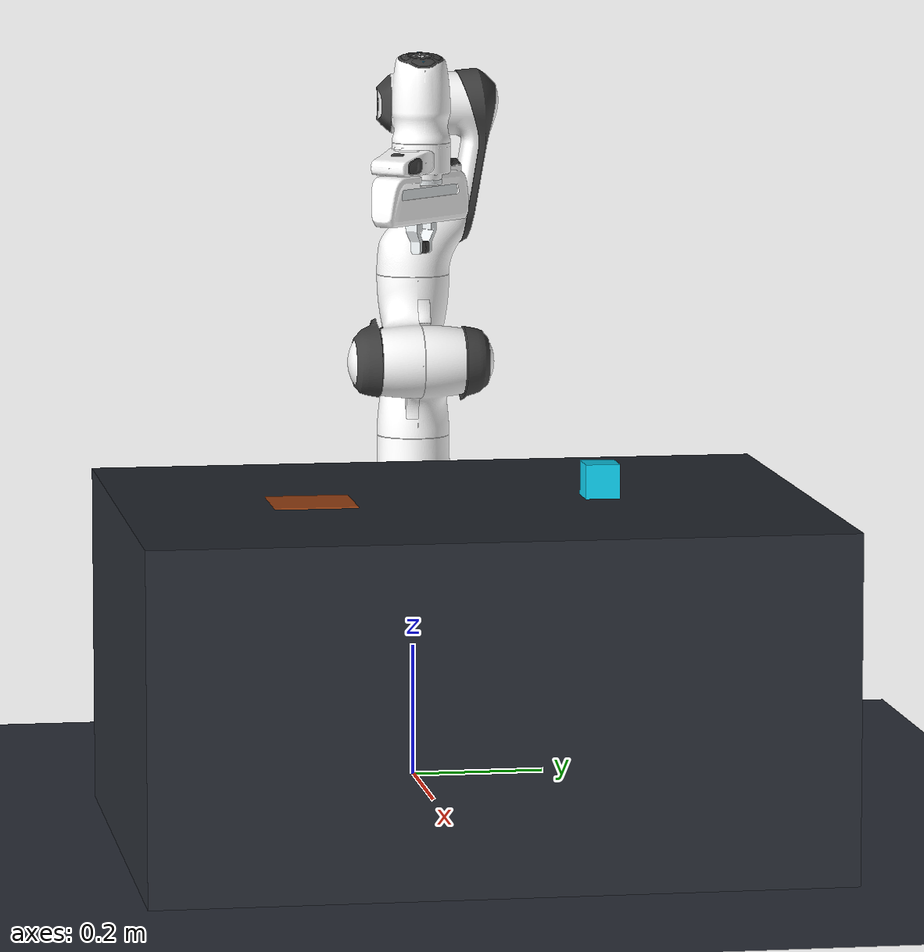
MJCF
<mujoco model="robot arm pick and place workstation">
  <include file="panda.xml"/>

  <visual>
    <headlight diffuse="0.7 0.7 0.7" ambient="0.3 0.3 0.3" specular="0.1 0.1 0.1"/>
    <rgba haze="0.15 0.25 0.35 1"/>
    <global azimuth="135" elevation="-25" offwidth="1280" offheight="720"/>
  </visual>

  <asset>
    <texture type="skybox" builtin="gradient" rgb1="0.2 0.35 0.5" rgb2="0.05 0.05 0.1" width="512" height="512"/>
    <texture type="2d" name="ground_tex" builtin="checker" mark="edge" rgb1="0.22 0.24 0.28" rgb2="0.16 0.18 0.22" markrgb="0.8 0.8 0.8" width="300" height="300"/>
    <material name="ground_mat" texture="ground_tex" texuniform="true" texrepeat="5 5" reflectance="0.1"/>
  </asset>

  <worldbody>
    <!-- 光照系统 -->
    <light pos="0 0 2.5" dir="0 0 -1" directional="true" diffuse="0.85 0.85 0.85" specular="0.2 0.2 0.2"/>
    <light pos="1.2 1.0 2.0" dir="-0.5 -0.5 -1" directional="true" diffuse="0.45 0.45 0.45"/>

    <!-- 地面 -->
    <geom name="floor" size="3 3 0.05" type="plane" material="ground_mat"/>

    <!-- 工业实验工作台 (Table) - 调整为深色哑光碳灰色，与白色机械臂形成鲜明对比 -->
    <!-- 桌面中心在 (0.5, 0, 0.25), 桌面顶面高度 Z = 0.50m -->
    <body name="worktable" pos="0.5 0 0.25">
      <geom name="table_top" type="box" size="0.4 0.5 0.25" rgba="0.15 0.17 0.20 1.0" friction="0.8 0.02 0.001"/>
    </body>

    <!-- 目标落点放置区 (B位置 - 目标点，橙色标记区域) -->
    <body name="target_zone" pos="0.5 -0.22 0.501">
      <geom name="zone_marker" type="box" size="0.06 0.06 0.001" rgba="0.95 0.4 0.1 0.7" contype="0" conaffinity="0"/>
    </body>

    <!-- 待抓取工件正方体 (A位置 - 初始位置，青蓝色 50mm 标准立方体) -->
    <!-- 方块半宽 0.025m (5cm 立方体)，放置在桌面 Z = 0.50 + 0.025 = 0.525m -->
    <body name="workpiece_cube" pos="0.5 0.2 0.525">
      <freejoint name="cube_joint"/>
      <geom name="cube_geom" type="box" size="0.025 0.025 0.025" rgba="0.05 0.82 0.95 1.0" mass="0.08" friction="1.2 0.05 0.001" condim="6" solref="0.005 1"/>
    </body>

    <!-- 顶部俯视摄像头 (Eye-to-Hand 机器视觉相机) -->
    <camera name="overhead_cam" pos="0.5 0 1.5" fovy="58" mode="fixed"/>

    <!-- 侧方全局观察监控相机 -->
    <camera name="surveillance_cam" pos="1.4 0.8 1.2" fovy="45" mode="targetbody" target="worktable"/>
  </worldbody>

  <!-- 初始关键帧姿态 (工业级悬空就绪待机姿势，指尖距工作台安全净空 16.1cm) -->
  <keyframe>
    <key name="ready"
         qpos="0.0 -0.2859 0.0 -1.6284 0.0 1.3425 0.7854 0.04 0.04 0.5 0.2 0.525 1 0 0 0"
         ctrl="0.0 -0.2859 0.0 -1.6284 0.0 1.3425 0.7854 255.0"/>
  </keyframe>
</mujoco>

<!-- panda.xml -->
<mujoco model="panda">
  <compiler angle="radian" meshdir="assets" autolimits="true"/>

  <option integrator="implicitfast"/>

  <default>
    <default class="panda">
      <material specular="0.5" shininess="0.25"/>
      <joint armature="0.1" damping="1" axis="0 0 1" range="-2.8973 2.8973"/>
      <general dyntype="none" biastype="affine" ctrlrange="-2.8973 2.8973" forcerange="-87 87"/>
      <default class="finger">
        <joint axis="0 1 0" type="slide" range="0 0.04"/>
      </default>

      <default class="visual">
        <geom type="mesh" contype="0" conaffinity="0" group="2"/>
      </default>
      <default class="collision">
        <geom type="mesh" group="3"/>
        <default class="fingertip_pad_collision_1">
          <geom type="box" size="0.0085 0.004 0.0085" pos="0 0.0055 0.0445"/>
        </default>
        <default class="fingertip_pad_collision_2">
          <geom type="box" size="0.003 0.002 0.003" pos="0.0055 0.002 0.05"/>
        </default>
        <default class="fingertip_pad_collision_3">
          <geom type="box" size="0.003 0.002 0.003" pos="-0.0055 0.002 0.05"/>
        </default>
        <default class="fingertip_pad_collision_4">
          <geom type="box" size="0.003 0.002 0.0035" pos="0.0055 0.002 0.0395"/>
        </default>
        <default class="fingertip_pad_collision_5">
          <geom type="box" size="0.003 0.002 0.0035" pos="-0.0055 0.002 0.0395"/>
        </default>
      </default>
    </default>
  </default>

  <asset>
    <material class="panda" name="white" rgba="1 1 1 1"/>
    <material class="panda" name="off_white" rgba="0.901961 0.921569 0.929412 1"/>
    <material class="panda" name="black" rgba="0.25 0.25 0.25 1"/>
    <material class="panda" name="green" rgba="0 1 0 1"/>
    <material class="panda" name="light_blue" rgba="0.039216 0.541176 0.780392 1"/>

    <!-- Collision meshes -->
    <mesh name="link0_c" file="link0.stl"/>
    <mesh name="link1_c" file="link1.stl"/>
    <mesh name="link2_c" file="link2.stl"/>
    <mesh name="link3_c" file="link3.stl"/>
    <mesh name="link4_c" file="link4.stl"/>
    <mesh name="link5_c0" file="link5_collision_0.obj"/>
    <mesh name="link5_c1" file="link5_collision_1.obj"/>
    <mesh name="link5_c2" file="link5_collision_2.obj"/>
    <mesh name="link6_c" file="link6.stl"/>
    <mesh name="link7_c" file="link7.stl"/>
    <mesh name="hand_c" file="hand.stl"/>

    <!-- Visual meshes -->
    <mesh file="link0_0.obj"/>
    <mesh file="link0_1.obj"/>
    <mesh file="link0_2.obj"/>
    <mesh file="link0_3.obj"/>
    <mesh file="link0_4.obj"/>
    <mesh file="link0_5.obj"/>
    <mesh file="link0_7.obj"/>
    <mesh file="link0_8.obj"/>
    <mesh file="link0_9.obj"/>
    <mesh file="link0_10.obj"/>
    <mesh file="link0_11.obj"/>
    <mesh file="link1.obj"/>
    <mesh file="link2.obj"/>
    <mesh file="link3_0.obj"/>
    <mesh file="link3_1.obj"/>
    <mesh file="link3_2.obj"/>
    <mesh file="link3_3.obj"/>
    <mesh file="link4_0.obj"/>
    <mesh file="link4_1.obj"/>
    <mesh file="link4_2.obj"/>
    <mesh file="link4_3.obj"/>
    <mesh file="link5_0.obj"/>
    <mesh file="link5_1.obj"/>
    <mesh file="link5_2.obj"/>
    <mesh file="link6_0.obj"/>
    <mesh file="link6_1.obj"/>
    <mesh file="link6_2.obj"/>
    <mesh file="link6_3.obj"/>
    <mesh file="link6_4.obj"/>
    <mesh file="link6_5.obj"/>
    <mesh file="link6_6.obj"/>
    <mesh file="link6_7.obj"/>
    <mesh file="link6_8.obj"/>
    <mesh file="link6_9.obj"/>
    <mesh file="link6_10.obj"/>
    <mesh file="link6_11.obj"/>
    <mesh file="link6_12.obj"/>
    <mesh file="link6_13.obj"/>
    <mesh file="link6_14.obj"/>
    <mesh file="link6_15.obj"/>
    <mesh file="link6_16.obj"/>
    <mesh file="link7_0.obj"/>
    <mesh file="link7_1.obj"/>
    <mesh file="link7_2.obj"/>
    <mesh file="link7_3.obj"/>
    <mesh file="link7_4.obj"/>
    <mesh file="link7_5.obj"/>
    <mesh file="link7_6.obj"/>
    <mesh file="link7_7.obj"/>
    <mesh file="hand_0.obj"/>
    <mesh file="hand_1.obj"/>
    <mesh file="hand_2.obj"/>
    <mesh file="hand_3.obj"/>
    <mesh file="hand_4.obj"/>
    <mesh file="finger_0.obj"/>
    <mesh file="finger_1.obj"/>
  </asset>

  <worldbody>
    <light name="top" pos="0 0 2" mode="trackcom"/>
    <body name="link0" childclass="panda">
      <inertial mass="0.629769" pos="-0.041018 -0.00014 0.049974"
        fullinertia="0.00315 0.00388 0.004285 8.2904e-7 0.00015 8.2299e-6"/>
      <geom mesh="link0_0" material="off_white" class="visual"/>
      <geom mesh="link0_1" material="black" class="visual"/>
      <geom mesh="link0_2" material="off_white" class="visual"/>
      <geom mesh="link0_3" material="black" class="visual"/>
      <geom mesh="link0_4" material="off_white" class="visual"/>
      <geom mesh="link0_5" material="black" class="visual"/>
      <geom mesh="link0_7" material="white" class="visual"/>
      <geom mesh="link0_8" material="white" class="visual"/>
      <geom mesh="link0_9" material="black" class="visual"/>
      <geom mesh="link0_10" material="off_white" class="visual"/>
      <geom mesh="link0_11" material="white" class="visual"/>
      <geom mesh="link0_c" class="collision"/>
      <body name="link1" pos="0 0 0.333">
        <inertial mass="4.970684" pos="0.003875 0.002081 -0.04762"
          fullinertia="0.70337 0.70661 0.0091170 -0.00013900 0.0067720 0.019169"/>
        <joint name="joint1"/>
        <geom material="white" mesh="link1" class="visual"/>
        <geom mesh="link1_c" class="collision"/>
        <body name="link2" quat="1 -1 0 0">
          <inertial mass="0.646926" pos="-0.003141 -0.02872 0.003495"
            fullinertia="0.0079620 2.8110e-2 2.5995e-2 -3.925e-3 1.0254e-2 7.04e-4"/>
          <joint name="joint2" range="-1.7628 1.7628"/>
          <geom material="white" mesh="link2" class="visual"/>
          <geom mesh="link2_c" class="collision"/>
          <body name="link3" pos="0 -0.316 0" quat="1 1 0 0">
            <joint name="joint3"/>
            <inertial mass="3.228604" pos="2.7518e-2 3.9252e-2 -6.6502e-2"
              fullinertia="3.7242e-2 3.6155e-2 1.083e-2 -4.761e-3 -1.1396e-2 -1.2805e-2"/>
            <geom mesh="link3_0" material="white" class="visual"/>
            <geom mesh="link3_1" material="white" class="visual"/>
            <geom mesh="link3_2" material="white" class="visual"/>
            <geom mesh="link3_3" material="black" class="visual"/>
            <geom mesh="link3_c" class="collision"/>
            <body name="link4" pos="0.0825 0 0" quat="1 1 0 0">
              <inertial mass="3.587895" pos="-5.317e-2 1.04419e-1 2.7454e-2"
                fullinertia="2.5853e-2 1.9552e-2 2.8323e-2 7.796e-3 -1.332e-3 8.641e-3"/>
              <joint name="joint4" range="-3.0718 -0.0698"/>
              <geom mesh="link4_0" material="white" class="visual"/>
              <geom mesh="link4_1" material="white" class="visual"/>
              <geom mesh="link4_2" material="black" class="visual"/>
              <geom mesh="link4_3" material="white" class="visual"/>
              <geom mesh="link4_c" class="collision"/>
              <body name="link5" pos="-0.0825 0.384 0" quat="1 -1 0 0">
                <inertial mass="1.225946" pos="-1.1953e-2 4.1065e-2 -3.8437e-2"
                  fullinertia="3.5549e-2 2.9474e-2 8.627e-3 -2.117e-3 -4.037e-3 2.29e-4"/>
                <joint name="joint5"/>
                <geom mesh="link5_0" material="black" class="visual"/>
                <geom mesh="link5_1" material="white" class="visual"/>
                <geom mesh="link5_2" material="white" class="visual"/>
                <geom mesh="link5_c0" class="collision"/>
                <geom mesh="link5_c1" class="collision"/>
                <geom mesh="link5_c2" class="collision"/>
                <body name="link6" quat="1 1 0 0">
                  <inertial mass="1.666555" pos="6.0149e-2 -1.4117e-2 -1.0517e-2"
                    fullinertia="1.964e-3 4.354e-3 5.433e-3 1.09e-4 -1.158e-3 3.41e-4"/>
                  <joint name="joint6" range="-0.0175 3.7525"/>
                  <geom mesh="link6_0" material="off_white" class="visual"/>
                  <geom mesh="link6_1" material="white" class="visual"/>
                  <geom mesh="link6_2" material="black" class="visual"/>
                  <geom mesh="link6_3" material="white" class="visual"/>
                  <geom mesh="link6_4" material="white" class="visual"/>
                  <geom mesh="link6_5" material="white" class="visual"/>
                  <geom mesh="link6_6" material="white" class="visual"/>
                  <geom mesh="link6_7" material="light_blue" class="visual"/>
                  <geom mesh="link6_8" material="light_blue" class="visual"/>
                  <geom mesh="link6_9" material="black" class="visual"/>
                  <geom mesh="link6_10" material="black" class="visual"/>
                  <geom mesh="link6_11" material="white" class="visual"/>
                  <geom mesh="link6_12" material="green" class="visual"/>
                  <geom mesh="link6_13" material="white" class="visual"/>
                  <geom mesh="link6_14" material="black" class="visual"/>
                  <geom mesh="link6_15" material="black" class="visual"/>
                  <geom mesh="link6_16" material="white" class="visual"/>
                  <geom mesh="link6_c" class="collision"/>
                  <body name="link7" pos="0.088 0 0" quat="1 1 0 0">
                    <inertial mass="7.35522e-01" pos="1.0517e-2 -4.252e-3 6.1597e-2"
                      fullinertia="1.2516e-2 1.0027e-2 4.815e-3 -4.28e-4 -1.196e-3 -7.41e-4"/>
                    <joint name="joint7"/>
                    <geom mesh="link7_0" material="white" class="visual"/>
                    <geom mesh="link7_1" material="black" class="visual"/>
                    <geom mesh="link7_2" material="black" class="visual"/>
                    <geom mesh="link7_3" material="black" class="visual"/>
                    <geom mesh="link7_4" material="black" class="visual"/>
                    <geom mesh="link7_5" material="black" class="visual"/>
                    <geom mesh="link7_6" material="black" class="visual"/>
                    <geom mesh="link7_7" material="white" class="visual"/>
                    <geom mesh="link7_c" class="collision"/>
                    <body name="hand" pos="0 0 0.107" quat="0.9238795 0 0 -0.3826834">
                      <inertial mass="0.73" pos="-0.01 0 0.03" diaginertia="0.001 0.0025 0.0017"/>
                      <geom mesh="hand_0" material="off_white" class="visual"/>
                      <geom mesh="hand_1" material="black" class="visual"/>
                      <geom mesh="hand_2" material="black" class="visual"/>
                      <geom mesh="hand_3" material="white" class="visual"/>
                      <geom mesh="hand_4" material="off_white" class="visual"/>
                      <geom mesh="hand_c" class="collision"/>
                      <body name="left_finger" pos="0 0 0.0584">
                        <inertial mass="0.015" pos="0 0 0" diaginertia="2.375e-6 2.375e-6 7.5e-7"/>
                        <joint name="finger_joint1" class="finger"/>
                        <geom mesh="finger_0" material="off_white" class="visual"/>
                        <geom mesh="finger_1" material="black" class="visual"/>
                        <geom mesh="finger_0" class="collision"/>
                        <geom class="fingertip_pad_collision_1"/>
                        <geom class="fingertip_pad_collision_2"/>
                        <geom class="fingertip_pad_collision_3"/>
                        <geom class="fingertip_pad_collision_4"/>
                        <geom class="fingertip_pad_collision_5"/>
                      </body>
                      <body name="right_finger" pos="0 0 0.0584" quat="0 0 0 1">
                        <inertial mass="0.015" pos="0 0 0" diaginertia="2.375e-6 2.375e-6 7.5e-7"/>
                        <joint name="finger_joint2" class="finger"/>
                        <geom mesh="finger_0" material="off_white" class="visual"/>
                        <geom mesh="finger_1" material="black" class="visual"/>
                        <geom mesh="finger_0" class="collision"/>
                        <geom class="fingertip_pad_collision_1"/>
                        <geom class="fingertip_pad_collision_2"/>
                        <geom class="fingertip_pad_collision_3"/>
                        <geom class="fingertip_pad_collision_4"/>
                        <geom class="fingertip_pad_collision_5"/>
                      </body>
                    </body>
                  </body>
                </body>
              </body>
            </body>
          </body>
        </body>
      </body>
    </body>
  </worldbody>

  <tendon>
    <fixed name="split">
      <joint joint="finger_joint1" coef="0.5"/>
      <joint joint="finger_joint2" coef="0.5"/>
    </fixed>
  </tendon>

  <equality>
    <joint joint1="finger_joint1" joint2="finger_joint2" solimp="0.95 0.99 0.001" solref="0.005 1"/>
  </equality>

  <actuator>
    <general class="panda" name="actuator1" joint="joint1" gainprm="4500" biasprm="0 -4500 -450"/>
    <general class="panda" name="actuator2" joint="joint2" gainprm="4500" biasprm="0 -4500 -450"
      ctrlrange="-1.7628 1.7628"/>
    <general class="panda" name="actuator3" joint="joint3" gainprm="3500" biasprm="0 -3500 -350"/>
    <general class="panda" name="actuator4" joint="joint4" gainprm="3500" biasprm="0 -3500 -350"
      ctrlrange="-3.0718 -0.0698"/>
    <general class="panda" name="actuator5" joint="joint5" gainprm="2000" biasprm="0 -2000 -200" forcerange="-12 12"/>
    <general class="panda" name="actuator6" joint="joint6" gainprm="2000" biasprm="0 -2000 -200" forcerange="-12 12"
      ctrlrange="-0.0175 3.7525"/>
    <general class="panda" name="actuator7" joint="joint7" gainprm="2000" biasprm="0 -2000 -200" forcerange="-12 12"/>
    <!-- Remap original ctrlrange (0, 0.04) to (0, 255): Kp=2000 -->
    <general class="panda" name="actuator8" tendon="split" forcerange="-100 100" ctrlrange="0 255"
      gainprm="0.313725 0 0" biasprm="0 -2000 -40"/>
  </actuator>

  <keyframe>
    <key name="home" qpos="0 0 0 -1.57079 0 1.57079 -0.7853 0.04 0.04" ctrl="0 0 0 -1.57079 0 1.57079 -0.7853 255"/>
  </keyframe>

  <contact>
    <exclude body1="link0" body2="link1"/>
  </contact>
</mujoco>
